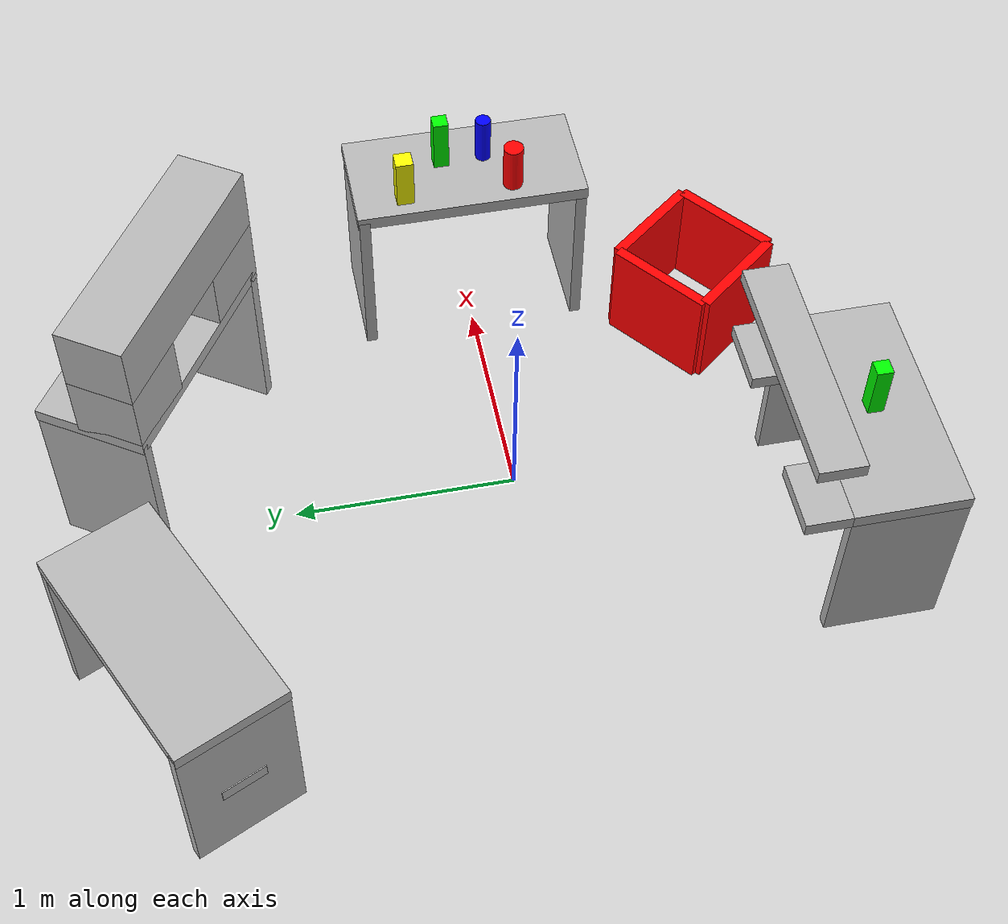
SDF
<sdf version='1.4'>
  <world name='tabledemo'>

    <model name='Table01'>
      <pose>0 0 0 0 0 0</pose>
      <link name='Table Lid'>
        <pose>1.20 0.0 0.8 0 0 0</pose>
        <collision name='collision'>
          <geometry>
            <box>
              <size>0.5 1.06 0.06</size>
            </box>
          </geometry>
        </collision>
        <visual name='visual'>
          <geometry>
            <box>
              <size>0.5 1.06 0.06</size>
            </box>
          </geometry>
        </visual>
      </link>

      <link name='Leg1'>
        <pose>1.20 0.5 0.4 0 0 0</pose>
        <collision name='collision'>
          <geometry>
            <box>
              <size>0.5 0.05 0.8</size>
            </box>
          </geometry>
        </collision>
        <visual name='visual'>
          <geometry>
            <box>
              <size>0.5 0.05 0.8</size>
            </box>
          </geometry>
        </visual>
      </link>
      <link name='Leg2'>
        <pose>1.20 -0.5 0.4 0 0 0</pose>
        <collision name='collision'>
          <geometry>
            <box>
              <size>0.5 0.05 0.8</size>
            </box>
          </geometry>
        </collision>
        <visual name='visual'>
          <geometry>
            <box>
              <size>0.5 0.05 0.8</size>
            </box>
          </geometry>
        </visual>
      </link>
      <static>1</static>
    </model>

    <model name='scene1-object1'>
      <pose>1.05 0.3 0.95 0 0 0</pose>
      <link name='scene1-object1'>
        <pose>0 0 0 0 0 0</pose>
        <collision name='collision'>
          <geometry>
            <box>
              <size>0.08 0.08 0.24</size>
            </box>
          </geometry>
        </collision>
        <visual name='visual'>
          <geometry>
            <box>
              <size>0.08 0.08 0.24</size>
            </box>
          </geometry>
          <material>
            <diffuse>1 1 0 1</diffuse>
            <ambient>1 1 0 1</ambient>
          </material>
        </visual>
      </link>
      <static>0</static>
    </model>

    <model name='scene1-object2'>
      <pose>1.25 0.1 0.955 0 0 0</pose>
      <link name='scene1-object2'>
        <pose>0 0 0 0 0 0</pose>
        <collision name='collision'>
          <geometry>
            <box>
              <size>0.07 0.07 0.25</size>
            </box>
          </geometry>
        </collision>
        <visual name='visual'>
          <geometry>
            <box>
              <size>0.07 0.07 0.25</size>
            </box>
          </geometry>
          <material>
            <diffuse>0 1 0 1</diffuse>
            <ambient>0 1 0 1</ambient>
          </material>
        </visual>
      </link>
      <static>0</static>
    </model>

    <model name='scene1-object3'>
      <pose>1.25 -0.1 0.94 0 0 0</pose>
      <link name='scene1-object3'>
        <pose>0 0 0 0 0 0</pose>
        <collision name='collision'>
          <geometry>
            <cylinder>
              <radius>0.035</radius>
              <length>0.22</length>
            </cylinder>
          </geometry>
        </collision>
        <visual name='visual'>
          <geometry>
            <cylinder>
              <radius>0.035</radius>
              <length>0.22</length>
            </cylinder>
          </geometry>
          <material>
            <diffuse>0 0 1 1</diffuse>
            <ambient>0 0 1 1</ambient>
          </material>
        </visual>
      </link>
      <static>0</static>
    </model>

    <model name='scene1-object4'>
      <pose>1.05 -0.2 0.94 0 0 0</pose>
      <link name='scene1-object4'>
        <pose>0 0 0 0 0 0</pose>
        <collision name='collision'>
          <geometry>
            <cylinder>
              <radius>0.045</radius>
              <length>0.22</length>
            </cylinder>
          </geometry>
        </collision>
        <visual name='visual'>
          <geometry>
            <cylinder>
              <radius>0.045</radius>
              <length>0.22</length>
            </cylinder>
          </geometry>
          <material>
            <diffuse>1 0 0 1</diffuse>
            <ambient>1 0 0 1</ambient>
          </material>
        </visual>
      </link>
      <static>0</static>
    </model>

    <model name='Table02'>
      <pose>-0.5 -0.2 0 0 0 -1.57</pose>
      <link name='Table Lid'>
        <pose>1.20 0.0 0.8 0 0 0</pose>
        <collision name='collision'>
          <geometry>
            <box>
              <size>0.5 1.06 0.06</size>
            </box>
          </geometry>
        </collision>
        <visual name='visual'>
          <geometry>
            <box>
              <size>0.5 1.06 0.06</size>
            </box>
          </geometry>
        </visual>
      </link>
      <link name='Table ExL'>
        <pose>0.85 0.38 0.8 0 0 0</pose>
        <collision name='collision'>
          <geometry>
            <box>
              <size>0.2 0.3 0.06</size>
            </box>
          </geometry>
        </collision>
        <visual name='visual'>
          <geometry>
            <box>
              <size>0.2 0.3 0.06</size>
            </box>
          </geometry>
        </visual>
      </link>
      <link name='Table ExR'>
        <pose>0.85 -0.38 0.8 0 0 0</pose>
        <collision name='collision'>
          <geometry>
            <box>
              <size>0.2 0.3 0.06</size>
            </box>
          </geometry>
        </collision>
        <visual name='visual'>
          <geometry>
            <box>
              <size>0.2 0.3 0.06</size>
            </box>
          </geometry>
        </visual>
      </link>
      <link name='Table ExT'>
        <pose>0.85 0.0 1.15 0 0 0</pose>
        <collision name='collision'>
          <geometry>
            <box>
              <size>0.2 1.06 0.06</size>
            </box>
          </geometry>
        </collision>
        <visual name='visual'>
          <geometry>
            <box>
              <size>0.2 1.06 0.06</size>
            </box>
          </geometry>
        </visual>
      </link>

      <link name='Leg1'>
        <pose>1.20 0.5 0.4 0 0 0</pose>
        <collision name='collision'>
          <geometry>
            <box>
              <size>0.5 0.05 0.8</size>
            </box>
          </geometry>
        </collision>
        <visual name='visual'>
          <geometry>
            <box>
              <size>0.5 0.05 0.8</size>
            </box>
          </geometry>
        </visual>
      </link>
      <link name='Leg2'>
        <pose>1.20 -0.5 0.4 0 0 0</pose>
        <collision name='collision'>
          <geometry>
            <box>
              <size>0.5 0.05 0.8</size>
            </box>
          </geometry>
        </collision>
        <visual name='visual'>
          <geometry>
            <box>
              <size>0.5 0.05 0.8</size>
            </box>
          </geometry>
        </visual>
      </link>
      <static>1</static>
    </model>

    <model name='scene2-object1'>
      <pose>-0.5 -0.2 0 0 0 -1.57</pose>
      <link name='scene2-object1'>
        <pose>1.2 0 0.955 0 0 0</pose>
        <collision name='collision'>
          <geometry>
            <box>
              <size>0.07 0.07 0.25</size>
            </box>
          </geometry>
        </collision>
        <visual name='visual'>
          <geometry>
            <box>
              <size>0.07 0.07 0.25</size>
            </box>
          </geometry>
          <material>
            <diffuse>0 1 0 1</diffuse>
            <ambient>0 1 0 1</ambient>
          </material>
        </visual>
      </link>
      <static>0</static>
    </model>

    <model name='Table03'>
      <pose>-0.2 0.5 0 0 0 1</pose>
      <link name='Table Lid'>
        <pose>1.20 0.0 0.8 0 0 0</pose>
        <collision name='collision'>
          <geometry>
            <box>
              <size>0.5 1.06 0.06</size>
            </box>
          </geometry>
        </collision>
        <visual name='visual'>
          <geometry>
            <box>
              <size>0.5 1.06 0.06</size>
            </box>
          </geometry>
        </visual>
      </link>

      <link name='Tunnel L'>
        <pose>1.1 0.355 0.95 0 0 0</pose>
        <collision name='collision'>
          <geometry>
            <box>
              <size>0.3 0.35 0.3</size>
            </box>
          </geometry>
        </collision>
        <visual name='visual'>
          <geometry>
            <box>
              <size>0.3 0.35 0.3</size>
            </box>
          </geometry>
        </visual>
      </link>
      <link name='Tunnel R'>
        <pose>1.1 -0.355 0.95 0 0 0</pose>
        <collision name='collision'>
          <geometry>
            <box>
              <size>0.3 0.35 0.3</size>
            </box>
          </geometry>
        </collision>
        <visual name='visual'>
          <geometry>
            <box>
              <size>0.3 0.35 0.3</size>
            </box>
          </geometry>
        </visual>
      </link>
      <link name='Tunnel T'>
        <pose>1.1 0 1.25 0 0 0</pose>
        <collision name='collision'>
          <geometry>
            <box>
              <size>0.3 1.06 0.3</size>
            </box>
          </geometry>
        </collision>
        <visual name='visual'>
          <geometry>
            <box>
              <size>0.3 1.06 0.3</size>
            </box>
          </geometry>
        </visual>
      </link>

      <link name='Leg1'>
        <pose>1.20 0.5 0.4 0 0 0</pose>
        <collision name='collision'>
          <geometry>
            <box>
              <size>0.5 0.05 0.8</size>
            </box>
          </geometry>
        </collision>
        <visual name='visual'>
          <geometry>
            <box>
              <size>0.5 0.05 0.8</size>
            </box>
          </geometry>
        </visual>
      </link>
      <link name='Leg2'>
        <pose>1.20 -0.5 0.4 0 0 0</pose>
        <collision name='collision'>
          <geometry>
            <box>
              <size>0.5 0.05 0.8</size>
            </box>
          </geometry>
        </collision>
        <visual name='visual'>
          <geometry>
            <box>
              <size>0.5 0.05 0.8</size>
            </box>
          </geometry>
        </visual>
      </link>
      <static>1</static>
    </model>

    <model name='scene3-object1'>
      <pose>-0.2 0.5 0 0 0 1</pose>
      <link name='scene3-object1'>
        <pose>1.3 0 0.955 0 0 0</pose>
        <collision name='collision'>
          <geometry>
            <box>
              <size>0.07 0.07 0.25</size>
            </box>
          </geometry>
        </collision>
        <visual name='visual'>
          <geometry>
            <box>
              <size>0.07 0.07 0.25</size>
            </box>
          </geometry>
          <material>
            <diffuse>0 1 0 1</diffuse>
            <ambient>0 1 0 1</ambient>
          </material>
        </visual>
      </link>
      <static>0</static>
    </model>

    <model name='Table04'>
      <pose>-0.5 0.5 0 0 0 2</pose>
      <link name='Table Lid'>
        <pose>1.20 0.0 0.8 0 0 0</pose>
        <collision name='collision'>
          <geometry>
            <box>
              <size>0.5 1.06 0.06</size>
            </box>
          </geometry>
        </collision>
        <visual name='visual'>
          <geometry>
            <box>
              <size>0.5 1.06 0.06</size>
            </box>
          </geometry>
        </visual>
      </link>
      <link name='Table Shelf'>
        <pose>1.20 0.0 0.375 0 0 0</pose>
        <collision name='collision'>
          <geometry>
            <box>
              <size>0.2 0.94 0.06</size>
            </box>
          </geometry>
        </collision>
        <visual name='visual'>
          <geometry>
            <box>
              <size>0.2 1.06 0.06</size>
            </box>
          </geometry>
        </visual>
      </link>

      <link name='Leg1'>
        <pose>1.20 0.5 0.4 0 0 0</pose>
        <collision name='collision'>
          <geometry>
            <box>
              <size>0.5 0.05 0.8</size>
            </box>
          </geometry>
        </collision>
        <visual name='visual'>
          <geometry>
            <box>
              <size>0.5 0.05 0.8</size>
            </box>
          </geometry>
        </visual>
      </link>
      <link name='Leg2'>
        <pose>1.20 -0.5 0.4 0 0 0</pose>
        <collision name='collision'>
          <geometry>
            <box>
              <size>0.5 0.05 0.8</size>
            </box>
          </geometry>
        </collision>
        <visual name='visual'>
          <geometry>
            <box>
              <size>0.5 0.05 0.8</size>
            </box>
          </geometry>
        </visual>
      </link>
      <static>1</static>
    </model>

    <model name='scene4-object1'>
      <pose>-0.5 0.5 0 0 0 2</pose>
      <link name='scene4-object1'>
        <pose>1.2 0 0.5 0 0 0</pose>
        <collision name='collision'>
          <geometry>
            <box>
              <size>0.07 0.07 0.25</size>
            </box>
          </geometry>
        </collision>
        <visual name='visual'>
          <geometry>
            <box>
              <size>0.07 0.07 0.25</size>
            </box>
          </geometry>
          <material>
            <diffuse>0 1 0 1</diffuse>
            <ambient>0 1 0 1</ambient>
          </material>
        </visual>
      </link>
      <static>0</static>
    </model>

    <model name='Box01'>
      <pose>0 0 0 0 0 -0.9</pose>
      <link name='Side1'>
        <pose>1.3 0.25 0.25 0 0 0</pose>
        <collision name='collision'>
          <geometry>
            <box>
              <size>0.5 0.05 0.5</size>
            </box>
          </geometry>
        </collision>
        <visual name='visual'>
          <geometry>
            <box>
              <size>0.5 0.05 0.5</size>
            </box>
          </geometry>
          <material>
            <diffuse>1 0 0 1</diffuse>
            <ambient>1 0 0 1</ambient>
          </material>
        </visual>
      </link>
      <link name='Side2'>
        <pose>1.3 -0.25 0.25 0 0 0</pose>
        <collision name='collision'>
          <geometry>
            <box>
              <size>0.5 0.05 0.5</size>
            </box>
          </geometry>
        </collision>
        <visual name='visual'>
          <geometry>
            <box>
              <size>0.5 0.05 0.5</size>
            </box>
          </geometry>
          <material>
            <diffuse>1 0 0 1</diffuse>
            <ambient>1 0 0 1</ambient>
          </material>
        </visual>
      </link>
      <link name='Side3'>
        <pose>1.55 0 0.25 0 0 0</pose>
        <collision name='collision'>
          <geometry>
            <box>
              <size>0.05 0.5 0.5</size>
            </box>
          </geometry>
        </collision>
        <visual name='visual'>
          <geometry>
            <box>
              <size>0.05 0.5 0.5</size>
            </box>
          </geometry>
          <material>
            <diffuse>1 0 0 1</diffuse>
            <ambient>1 0 0 1</ambient>
          </material>
        </visual>
      </link>
      <link name='Side4'>
        <pose>1.05 0 0.25 0 0 0</pose>
        <collision name='collision'>
          <geometry>
            <box>
              <size>0.05 0.5 0.5</size>
            </box>
          </geometry>
        </collision>
        <visual name='visual'>
          <geometry>
            <box>
              <size>0.05 0.5 0.5</size>
            </box>
          </geometry>
          <material>
            <diffuse>1 0 0 1</diffuse>
            <ambient>1 0 0 1</ambient>
          </material>
        </visual>
      </link>
      <static>1</static>
    </model>

  </world>
</sdf>
